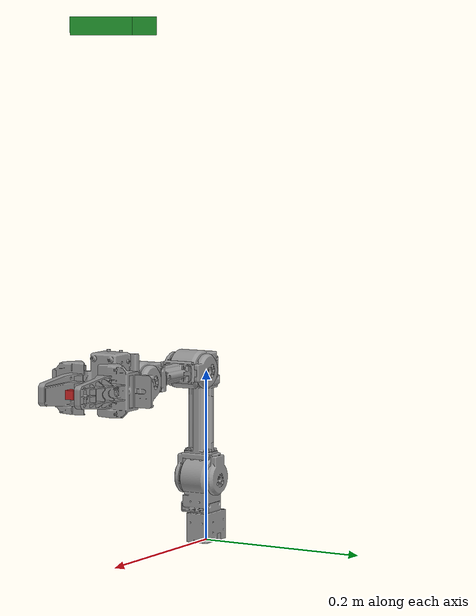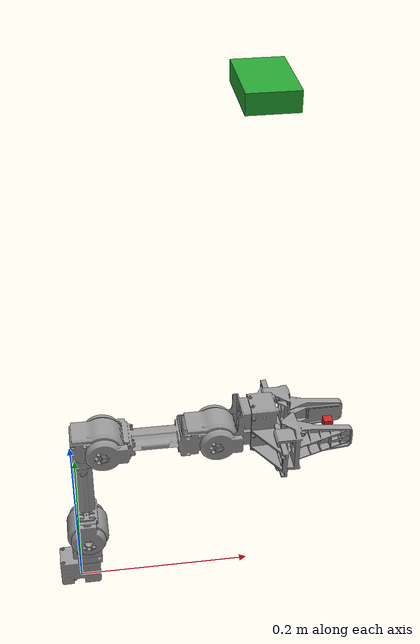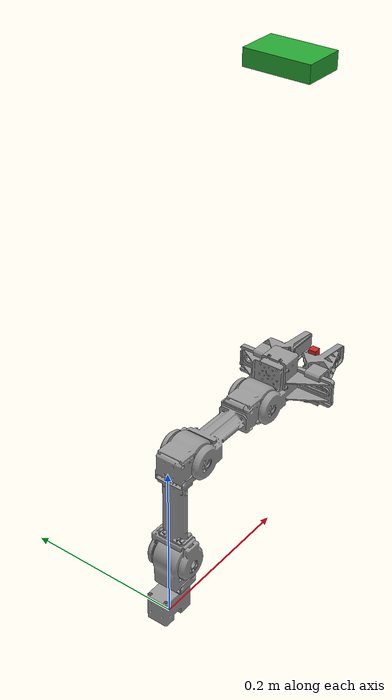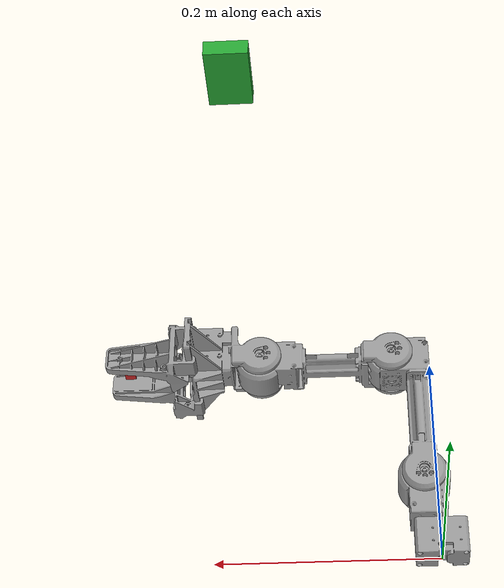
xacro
<?xml version="1.0"?>
<!-- Open_Manipulator Chain -->
<robot name="open_manipulator" xmlns:xacro="http://ros.org/wiki/xacro">

  <!-- Import all Gazebo-customization elements, including Gazebo colors -->
  <xacro:include filename="$(find open_manipulator_description)/urdf/open_manipulator.gazebo.xacro" />
  <!-- Import Rviz colors -->
  <xacro:include filename="$(find open_manipulator_description)/urdf/materials.xacro" />
  <xacro:include filename="$(find kair_algorithms)/urdf/camera.urdf.xacro"/>

  <!-- Transmission macro -->
  <xacro:macro name="SimpleTransmission" params="joint n">
    <transmission name="tran${n}">
      <type>transmission_interface/SimpleTransmission</type>
      <joint name="${joint}">
        <hardwareInterface>hardware_interface/PositionJointInterface</hardwareInterface>
      </joint>
      <actuator name="motor${n}">
        <hardwareInterface>hardware_interface/PositionJointInterface</hardwareInterface>
        <mechanicalReduction>1</mechanicalReduction>
      </actuator>
    </transmission>
  </xacro:macro>

  <!-- World -->
  <link name="world">
  </link>

  <!-- World fixed joint-->
  <joint name="world_fixed" type="fixed">
    <origin xyz="0 0 0" rpy="0 0 0"/>
    <parent link="world"/>
    <child link="link1"/>
  </joint>

  <!-- Link 1 -->
  <link name="link1">
    <visual>
      <origin xyz="0 0 0" rpy="0 0 0"/>
      <geometry>
        <mesh filename="package://open_manipulator_description/meshes/chain_link1.stl" scale="0.001 0.001 0.001"/>
      </geometry>
      <material name="grey"/>
    </visual>

    <collision>
      <origin xyz="0 0 0" rpy="0 0 0"/>
      <geometry>
        <mesh filename="package://open_manipulator_description/meshes/chain_link1.stl" scale="0.001 0.001 0.001"/>
      </geometry>
    </collision>

     <inertial>
      <origin xyz="3.0876154e-04 0.0000000e+00 -1.2176461e-04" />
      <mass value="7.9119962e-02" />
      <inertia ixx="1.2505234e-05" ixy="0.0" ixz="-1.7855208e-07"
               iyy="2.1898364e-05" iyz="0.0"
               izz="1.9267361e-05" />
    </inertial>
  </link>

  <!-- Joint 1 -->
  <joint name="joint1" type="revolute">
    <parent link="link1"/>
    <child link="link2"/>
    <origin xyz="0.012 0.0 0.017" rpy="0 0 0"/>
    <axis xyz="0 0 1"/>
    <limit velocity="4.8" effort="1" lower="${-pi*0.9}" upper="${pi*0.9}" />
  </joint>

  <!-- Transmission 1 -->
  <xacro:SimpleTransmission n="1" joint="joint1" />

  <!--  Link 2 -->
  <link name="link2">
    <visual>
      <origin xyz="0 0 0.019" rpy="0 0 0"/>
      <geometry>
        <mesh filename="package://open_manipulator_description/meshes/chain_link2.stl" scale="0.001 0.001 0.001"/>
      </geometry>
      <material name="grey"/>
    </visual>

    <collision>
      <origin xyz="0 0 0.019" rpy="0 0 0"/>
      <geometry>
        <mesh filename="package://open_manipulator_description/meshes/chain_link2.stl" scale="0.001 0.001 0.001"/>
      </geometry>
    </collision>

     <inertial>
      <origin xyz="-3.0184870e-04 5.4043684e-04 ${0.018 + 2.9433464e-02}" />
      <mass value="9.8406837e-02" />
      <inertia ixx="3.4543422e-05" ixy="-1.6031095e-08" ixz="-3.8375155e-07"
               iyy="3.2689329e-05" iyz="2.8511935e-08"
               izz="1.8850320e-05" />
    </inertial>
  </link>

  <!--  Joint 2 -->
  <joint name="joint2" type="revolute">
    <parent link="link2"/>
    <child link="link3"/>
    <origin xyz="0.0 0.0 0.0595" rpy="0 0 0"/>
    <axis xyz="0 1 0"/>
    <limit velocity="4.8" effort="1" lower="${-pi*0.57}" upper="${pi*0.5}" />
  </joint>

  <!-- Transmission 2 -->
  <xacro:SimpleTransmission n="2" joint="joint2" />

  <!--  Link 3 -->
  <link name="link3">
    <visual>
      <origin xyz="0 0 0" rpy="0 0 0"/>
      <geometry>
        <mesh filename="package://open_manipulator_description/meshes/chain_link3.stl" scale="0.001 0.001 0.001"/>
      </geometry>
      <material name="grey"/>
    </visual>

    <collision>
      <origin xyz="0 0 0" rpy="0 0 0"/>
      <geometry>
        <mesh filename="package://open_manipulator_description/meshes/chain_link3.stl" scale="0.001 0.001 0.001"/>
      </geometry>
    </collision>

     <inertial>
      <origin xyz="1.0308393e-02 3.7743363e-04 1.0170197e-01" />
      <mass value="1.3850917e-01" />
      <inertia ixx="3.3055381e-04" ixy="-9.7940978e-08" ixz="-3.8505711e-05"
               iyy="3.4290447e-04" iyz="-1.5717516e-06"
               izz="6.0346498e-05" />
    </inertial>
  </link>

  <!--  Joint 3 -->
  <joint name="joint3" type="revolute">
    <parent link="link3"/>
    <child link="link4"/>
    <origin xyz="0.024 0 0.128" rpy="0 0 0"/>
    <axis xyz="0 1 0"/>
    <limit velocity="4.8" effort="1" lower="${-pi*0.3}" upper="${pi*0.44}" />
  </joint>

  <!-- Transmission 3 -->
  <xacro:SimpleTransmission n="3" joint="joint3" />

  <!--  Link 4 -->
  <link name="link4">
    <visual>
      <origin xyz="0 0 0" rpy="0 0 0"/>
      <geometry>
        <mesh filename="package://open_manipulator_description/meshes/chain_link4.stl" scale="0.001 0.001 0.001"/>
      </geometry>
      <material name="grey"/>
    </visual>

    <collision>
      <origin xyz="0 0 0" rpy="0 0 0"/>
      <geometry>
        <mesh filename="package://open_manipulator_description/meshes/chain_link4.stl" scale="0.001 0.001 0.001"/>
      </geometry>
    </collision>

     <inertial>
      <origin xyz="9.0909590e-02 3.8929816e-04 2.2413279e-04" />
      <mass value="1.3274562e-01" />
      <inertia ixx="3.0654178e-05" ixy="-1.2764155e-06" ixz="-2.6874417e-07"
               iyy="2.4230292e-04" iyz="1.1559550e-08"
               izz="2.5155057e-04" />
    </inertial>
  </link>

  <!--  Joint 4 -->
  <joint name="joint4" type="revolute">
    <parent link="link4"/>
    <child link="link5"/>
    <origin xyz="0.124 0.0 0.0" rpy="0 0 0"/>
    <axis xyz="0 1 0"/>
    <limit velocity="4.8" effort="1" lower="${-pi*0.57}" upper="${pi*0.65}" />
  </joint>

  <!-- Transmission 4 -->
  <xacro:SimpleTransmission n="4" joint="joint4" />

  <!--  Link 5 -->
  <link name="link5">
    <visual>
      <origin xyz="0 0 0" rpy="0 0 0"/>
      <geometry>
        <mesh filename="package://open_manipulator_description/meshes/chain_link5.stl" scale="0.001 0.001 0.001"/>
      </geometry>
      <material name="grey"/>
    </visual>

    <collision>
      <origin xyz="0 0 0" rpy="0 0 0"/>
      <geometry>
        <mesh filename="package://open_manipulator_description/meshes/chain_link5.stl" scale="0.001 0.001 0.001"/>
      </geometry>
    </collision>

     <inertial>
      <origin xyz="4.4206755e-02 3.6839985e-07 8.9142216e-03" />
      <mass value="1.4327573e-01" />
      <inertia ixx="8.0870749e-05" ixy="0.0" ixz="-1.0157896e-06"
               iyy="7.5980465e-05" iyz="0.0"
               izz="9.3127351e-05" />
    </inertial>
  </link>

  <!--  Gripper link -->
  <link name="gripper_link">
    <visual>
      <origin xyz="0.0 0.0 0" rpy="0 0 0"/>
      <geometry>
        <mesh filename="package://open_manipulator_description/meshes/chain_link_grip_l.stl" scale="0.001 0.001 0.001"/>
      </geometry>
      <material name="grey"/>
    </visual>

    <collision>
      <origin xyz="0.0 0.0 0" rpy="0 0 0"/>
      <geometry>
        <mesh filename="package://open_manipulator_description/meshes/chain_link_grip_l.stl" scale="0.001 0.001 0.001"/>
      </geometry>
    </collision>

    <inertial>
      <origin xyz="0 0 0" />
      <mass value="0.017" />
      <inertia ixx="1.0e-03" ixy="0.0" ixz="0.0"
               iyy="1.0e-03" iyz="0.0"
               izz="1.0e-03" />
    </inertial>

  </link>

  <!--  Gripper joint -->
  <joint name="gripper" type="prismatic">
    <parent link="link5"/>
    <child link="gripper_link"/>
    <origin xyz="0.0817 0.021 0.0" rpy="0 0 0"/>
    <axis xyz="0 1 0"/>
    <limit velocity="4.8" effort="1" lower="-0.010" upper="0.019" />
  </joint>

  <!-- Transmission 5 -->
  <xacro:SimpleTransmission n="5" joint="gripper" />

  <!--  Gripper link sub -->
  <link name="gripper_link_sub">
    <visual>
      <origin xyz="0.0 -0.0 0" rpy="0 0 0"/>
      <geometry>
        <mesh filename="package://open_manipulator_description/meshes/chain_link_grip_r.stl" scale="0.001 0.001 0.001"/>
      </geometry>
      <material name="grey"/>
    </visual>

    <collision>
      <origin xyz="0.0 -0.0 0" rpy="0 0 0"/>
      <geometry>
        <mesh filename="package://open_manipulator_description/meshes/chain_link_grip_r.stl" scale="0.001 0.001 0.001"/>
      </geometry>
    </collision>

    <inertial>
      <origin xyz="0 0 0" />
      <mass value="0.017" />
      <inertia ixx="1.0e-03" ixy="0.0" ixz="0.0"
               iyy="1.0e-03" iyz="0.0"
               izz="1.0e-03" />
    </inertial>

  </link>

  <!--  Gripper joint sub -->
  <joint name="gripper_sub" type="prismatic">
    <parent link="link5"/>
    <child link="gripper_link_sub"/>
    <origin xyz="0.0817 -0.021 0" rpy="0 0 0"/>
    <axis xyz="0 -1 0"/>
    <limit velocity="4.8" effort="1" lower="-0.010" upper="0.019" />
    <mimic joint="gripper" multiplier="1"/>
  </joint>

  <!-- Transmission 6 -->
  <xacro:SimpleTransmission n="6" joint="gripper_sub" />

  <!-- end effector joint -->
  <joint name="end_effector_joint" type="fixed">
    <origin xyz="0.126 0.0 0.0" rpy="0 0 0"/>
    <parent link="link5"/>
    <child link="end_effector_link"/>
  </joint>

  <!-- end effector link -->
  <link name="end_effector_link">
    <visual>
      <origin xyz="0 0 0" rpy="0 0 0"/>
      <geometry>
        <box size="0.01 0.01 0.01" />
      </geometry>
      <material name="red"/>
     </visual>

    <inertial>
      <origin xyz="0.0 0.0 0.0" rpy="0 0 0"/>
      <mass value="0.001"/>
      <inertia ixx="1.0e-06" ixy="0.0" ixz="0.0" iyy="1.0e-06" iyz="0.0" izz="1.0e-06" />
    </inertial>
  </link>

    <!--Camera link and plugin-->
    <xacro:camera_sensor xyz="0.2 0 ${0.4 + 0.2}"
                  rpy="0 1.57 0"
                  parent="world">
    </xacro:camera_sensor>

</robot>

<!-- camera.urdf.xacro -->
<robot xmlns:xacro="http://www.ros.org/wiki/xacro" name="camera">

    <xacro:property name="pi" value="3.1415926535897931"/>

    <xacro:macro name="camera_sensor" params="xyz rpy parent">
        <joint name="camera_sensor_joint" type="fixed">
            <axis xyz="0 1 0" />
            <origin xyz="${xyz}" rpy="${rpy}"/>
            <parent link="${parent}"/>
            <child link="camera_link"/>
        </joint>

        <link name="camera_link">
            <collision>
                <origin xyz="0 0 0" rpy="0 0 0"/>
                <geometry>
                    <box size="0.02 0.08 0.05"/>
                </geometry>
            </collision>
            <visual>
                <origin xyz="0 0 0" rpy="0 0 0"/>
                <geometry>
                    <box size="0.02 0.08 0.05"/>
                </geometry>
                <material name="iRobot/Green"/>
            </visual>
            <inertial>
                <mass value="0.0001" />
                <origin xyz="0 0 0" rpy="0 0 ${pi}"/>
                <inertia ixx="0.0000001" ixy="0" ixz="0" iyy="0.0000001" iyz="0" izz="0.0000001" />
            </inertial>
        </link>

        <gazebo reference="camera_link">
            <sensor type="camera" name="camera">
                <update_rate>30.0</update_rate>
                <camera name="head">
                    <horizontal_fov>1.3962634</horizontal_fov>
                    <image>
                        <width>800</width>
                        <height>600</height>
                        <format>R8G8B8</format>
                    </image>
                    <clip>
                        <near>0.02</near>
                        <far>300</far>
                    </clip>
                    <noise>
                        <type>gaussian</type>
                        <mean>0.0</mean>
                        <stddev>0.007</stddev>
                    </noise>
                </camera>
                <plugin name="camera_controller" filename="libgazebo_ros_camera.so">
                    <alwaysOn>true</alwaysOn>
                    <updateRate>0.0</updateRate>
                    <cameraName>camera</cameraName>
                    <imageTopicName>image_raw</imageTopicName>
                    <cameraInfoTopicName>camera_info</cameraInfoTopicName>
                    <frameName>camera_link</frameName>
                    <hackBaseline>0.07</hackBaseline>
                    <distortionK1>0.0</distortionK1>
                    <distortionK2>0.0</distortionK2>
                    <distortionK3>0.0</distortionK3>
                    <distortionT1>0.0</distortionT1>
                    <distortionT2>0.0</distortionT2>
                </plugin>
            </sensor>
    </gazebo>

    </xacro:macro>

</robot>
